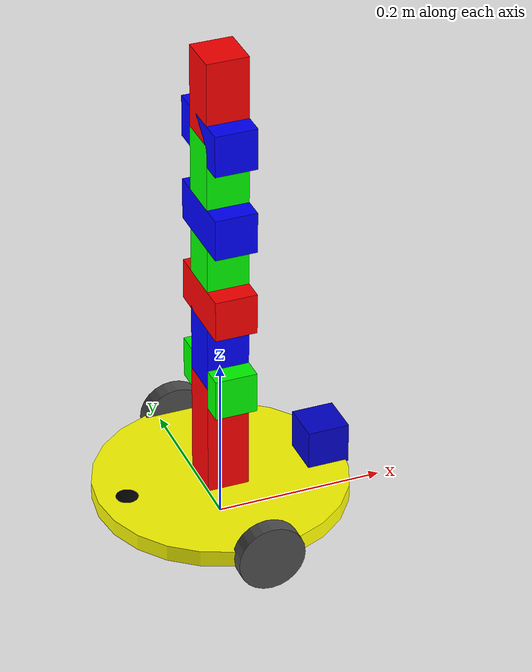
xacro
<?xml version="1.0"?>
<robot name="differential_wheeled_robot" xmlns:xacro="http://ros.org/wiki/xacro">

  <xacro:include filename="$(find diff_mobile_robot)/urdf/wheel.urdf.xacro" />
  <include filename="$(find diff_mobile_robot)/urdf/toyoarm.urdf" />

<!-- Defining the colors used in this robot -->
  <material name="Black">
    <color rgba="0.0 0.0 0.0 1.0"/>
  </material>

  <material name="Red">
    <color rgba="0.8 0.0 0.0 1.0"/>
  </material>

  <material name="White">
    <color rgba="1.0 1.0 1.0 1.0"/>
  </material>

  <material name="Blue">
    <color rgba="0.0 0.0 0.8 1.0"/>
  </material>

  <material name="Yellow">
    <color rgba="1.0 1.0 0.0 1.0"/>
  </material>

  <!-- PROPERTY LIST -->
  <!--All units in m-kg-s-radians unit system -->
  <property name="M_PI" value="3.1415926535897931" />
  <property name="M_PI_2" value="1.570796327" />
  <property name="DEG_TO_RAD" value="0.017453293" />

  <!-- Main body radius and height -->
  <!-- Main Body Cylinder base   -->
  <property name="base_height" value="0.02" />
  <property name="base_radius" value="0.15" />
  <property name="base_mass" value="50.0" /> <!-- in kg-->

  <!-- caster wheel radius and height -->
  <!-- caster wheel mass -->
  <property name="caster_f_height" value="0.04" />
  <property name="caster_f_radius" value="0.025" />
  <property name="caster_f_mass" value="50.0" /> <!-- in kg-->

  <!-- caster wheel radius and height -->
  <!-- caster wheel mass -->
  <property name="caster_b_height" value="0.04" />
  <property name="caster_b_radius" value="0.025" />
  <property name="caster_b_mass" value="50.0" /> <!-- in kg-->

  <!-- Wheels -->
  <property name="wheel_mass" value="50.0" /> --> <!-- in kg-->
  <property name="base_x_origin_to_wheel_origin" value="0.25" />
  <property name="base_y_origin_to_wheel_origin" value="0.3" />
  <property name="base_z_origin_to_wheel_origin" value="0.0" />

  <!-- Hokuyo Laser scanner -->
  <property name="hokuyo_size" value="0.05" />

  <!-- Macro for calculating inertia of cylinder -->
  <macro name="cylinder_inertia" params="m r h">
    <inertia  ixx="${m*(3*r*r+h*h)/12}" ixy = "0" ixz = "0"
              iyy="${m*(3*r*r+h*h)/12}" iyz = "0"
              izz="${m*r*r/2}" />
  </macro>

  <!-- BASE-FOOTPRINT -->
  <!-- base_footprint is a fictitious link(frame) that is on the ground right below base_link origin -->
  <link name="base_footprint">
    <inertial>
      <mass value="0.0001" />
      <origin xyz="0 0 0" />
      <inertia ixx="0.0001" ixy="0.0" ixz="0.0"
          iyy="0.0001" iyz="0.0"
          izz="0.0001" />
    </inertial>
    <visual>
        <origin xyz="0 0 0" rpy="0 0 0" />
        <geometry>
            <box size="0.001 0.001 0.001" />
        </geometry>
    </visual>
  </link>

  <gazebo reference="base_footprint">
    <turnGravityOff>false</turnGravityOff>
  </gazebo>

  <joint name="base_footprint_joint" type="fixed">
    <origin xyz="0 0 ${wheel_radius - base_z_origin_to_wheel_origin}" rpy="0 0 0" />
    <parent link="base_footprint"/>
    <child link="base_link" />
  </joint>

  <!-- BASE-LINK -->
  <!--Actual body/chassis of the robot-->
  <link name="base_link">
    <inertial>
      <mass value="${base_mass}" />
      <origin xyz="0 0 0" />
      <!--The 3x3 rotational inertia matrix. -->
        <cylinder_inertia  m="${base_mass}" r="${base_radius}" h="${base_height}" />

    </inertial>
    <visual>
      <origin xyz="0 0 0" rpy="0 0 0" />
      <geometry>
          <cylinder length="${base_height}" radius="${base_radius}" />
      </geometry>
      <material name="Yellow" />
    </visual>
    <collision>
      <origin xyz="0 0 0" rpy="0 0 0 " />
      <geometry>
          <cylinder length="${base_height}" radius="${base_radius}" />
      </geometry>
    </collision>
  </link>
  <gazebo reference="base_link">
    <material>Gazebo/White</material>
    <turnGravityOff>false</turnGravityOff>
  </gazebo>

<!--Caster front  -->

    <link name="caster_front_link">
    <visual>
      <origin xyz="0 0.02 0" rpy="${M_PI/2} 0 0" />
      <geometry>
 <sphere radius="${caster_f_radius}" />
      </geometry>
      <material name="Black" />
    </visual>

      <collision>
        <geometry>
 <sphere radius="${caster_f_radius}" />
        </geometry>
      <origin xyz="0 0.02 0" rpy="${M_PI/2} 0 0" />
      </collision>
      <inertial>
        <mass value="${caster_f_mass}" />
        <origin xyz="0 0 0" />
        <inertia ixx="0.001" ixy="0.0" ixz="0.0"
                 iyy="0.001" iyz="0.0"
                 izz="0.001" />
      </inertial>
    </link>

 <joint name="caster_front_joint" type="fixed">
      <parent link="base_link"/>
      <child link="caster_front_link"/>
      <origin xyz="0.115 0.0 0.007" rpy="${-M_PI/2} 0 0"/>
    </joint>
  <gazebo reference="caster_front_link">
    <turnGravityOff>false</turnGravityOff>
  </gazebo>

<!--Caster back  -->
    <link name="caster_back_link">
    <visual>
      <origin xyz="0.02 0.02 0 " rpy="${M_PI/2} 0 0" />
      <geometry>
 <sphere radius="${caster_b_radius}" />
      </geometry>
      <material name="Black" />
    </visual>
      <collision>
        <geometry>
 <sphere radius="${caster_b_radius}" />
        </geometry>
      <origin xyz="0 0.02 0 " rpy="${M_PI/2} 0 0" />
      </collision>
      <inertial>
        <mass value="${caster_b_mass}" />
        <origin xyz="0 0 0" />
        <inertia ixx="0.001" ixy="0.0" ixz="0.0"
                 iyy="0.001" iyz="0.0"
                 izz="0.001" />
      </inertial>
    </link>

    <joint name="caster_back_joint" type="fixed">
      <parent link="base_link"/>
      <child link="caster_back_link"/>
      <origin xyz="-0.135 0.0 0.009" rpy="${-M_PI/2} 0 0"/>
    </joint>

  <gazebo reference="caster_back_link">
    <turnGravityOff>false</turnGravityOff>
  </gazebo>

<!-- Wheel Definitions -->
  <wheel fb="front" lr="right" parent="base_link" translateX="0" translateY="0.5" flipY="1"/>
  <wheel fb="front" lr="left" parent="base_link" translateX="0" translateY="-0.5" flipY="1"/>

  <!-- SENSORS -->

  <!-- hokuyo -->
  <link name="hokuyo_link">
    <visual>
      <origin xyz="0 0 0" rpy="0 0 0" />
      <geometry>
        <box size="${hokuyo_size} ${hokuyo_size} ${hokuyo_size}"/>
      </geometry>
      <material name="Blue" />
    </visual>
  </link>
  <joint name="hokuyo_joint" type="fixed">
    <origin xyz="${base_radius - hokuyo_size/2} 0 ${base_height+hokuyo_size/4}" rpy="0 0 0" />
    <parent link="base_link"/>
    <child link="hokuyo_link" />
  </joint>
  <gazebo reference="hokuyo_link">
    <material>Gazebo/Blue</material>
    <turnGravityOff>false</turnGravityOff>
    <sensor type="ray" name="head_hokuyo_sensor">
      <pose>${hokuyo_size/2} 0 0 0 0 0</pose>
      <visualize>false</visualize>
      <update_rate>40</update_rate>
      <ray>
        <scan>
          <horizontal>
            <samples>720</samples>
            <resolution>1</resolution>
            <min_angle>-3.141592</min_angle>
            <max_angle>3.141592</max_angle>
          </horizontal>
        </scan>
        <range>
          <min>0.30</min>
          <max>100.0</max>
          <resolution>0.001</resolution>
        </range>
      </ray>
      <plugin name="gazebo_ros_head_hokuyo_controller" filename="libgazebo_ros_laser.so">
        <topicName>/scan</topicName>
        <frameName>hokuyo_link</frameName>
      </plugin>
    </sensor>
  </gazebo>

  <!-- Differential drive controller  -->
  <gazebo>
    <plugin name="differential_drive_controller" filename="libgazebo_ros_diff_drive.so">

      <rosDebugLevel>Debug</rosDebugLevel>
      <publishWheelTF>false</publishWheelTF>
      <robotNamespace>/</robotNamespace>
      <publishTf>1</publishTf>
      <publishWheelJointState>false</publishWheelJointState>
      <alwaysOn>true</alwaysOn>
      <updateRate>100.0</updateRate>
      <leftJoint>front_left_wheel_joint</leftJoint>
      <rightJoint>front_right_wheel_joint</rightJoint>
      <wheelSeparation>${2*base_radius}</wheelSeparation>
      <wheelDiameter>${2*wheel_radius}</wheelDiameter>
      <broadcastTF>1</broadcastTF>
      <wheelTorque>30</wheelTorque>
      <wheelAcceleration>1.8</wheelAcceleration>
      <commandTopic>cmd_vel</commandTopic>
      <odometryFrame>odom</odometryFrame>
      <odometryTopic>odom</odometryTopic>
      <robotBaseFrame>base_footprint</robotBaseFrame>
      <legacyMode>false</legacyMode>
      <odometrySource>world</odometrySource>
      <publishOdomTF>true</publishOdomTF>
    </plugin>
  </gazebo>
</robot>

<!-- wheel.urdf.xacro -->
<robot name="wheel" xmlns:xacro="http://www.ros.org/wiki/xacro">

  <!-- Wheels -->
  <property name="wheel_radius" value="0.04" />
  <property name="wheel_height" value="0.02" />
  <property name="wheel_mass" value="2.5" /> <!-- in kg-->

  <property name="base_x_origin_to_wheel_origin" value="0.25" />
  <property name="base_y_origin_to_wheel_origin" value="0.3" />
  <property name="base_z_origin_to_wheel_origin" value="0.0" />

  <macro name="cylinder_inertia" params="m r h">
    <inertia  ixx="${m*(3*r*r+h*h)/12}" ixy = "0" ixz = "0"
              iyy="${m*(3*r*r+h*h)/12}" iyz = "0"
              izz="${m*r*r/2}" />
  </macro>

  <xacro:macro name="wheel" params="fb lr parent translateX translateY flipY"> <!--fb : front, back ; lr: left, right -->
    <link name="${fb}_${lr}_wheel">
      <visual>
        <origin xyz="0 0 0" rpy="${flipY*M_PI/2} 0 0" />
        <geometry>
          <cylinder length="${wheel_height}" radius="${wheel_radius}" />
        </geometry>
        <material name="DarkGray" />
      </visual>
      <collision>
        <origin xyz="0 0 0" rpy="${flipY*M_PI/2} 0 0" />
        <geometry>
          <cylinder length="${wheel_height}" radius="${wheel_radius}" />
        </geometry>
      </collision>
      <inertial>
        <mass value="${wheel_mass}" />
        <origin xyz="0 0 0" />
        <cylinder_inertia  m="${wheel_mass}" r="${wheel_radius}" h="${wheel_height}" />
      </inertial>
    </link>

    <gazebo reference="${fb}_${lr}_wheel">
      <mu1 value="1.0"/>
      <mu2 value="1.0"/>
      <kp  value="10000000.0" />
      <kd  value="1.0" />
      <fdir1 value="1 0 0"/>
      <material>Gazebo/Grey</material>
      <turnGravityOff>false</turnGravityOff>
    </gazebo>

    <joint name="${fb}_${lr}_wheel_joint" type="continuous">
      <parent link="${parent}"/>
      <child link="${fb}_${lr}_wheel"/>
      <origin xyz="${translateX * base_x_origin_to_wheel_origin} ${translateY * base_y_origin_to_wheel_origin} ${base_z_origin_to_wheel_origin}" rpy="0 0 0" />
      <axis xyz="0 1 0" rpy="0 0 0" />
      <limit effort="100" velocity="100"/>
      <joint_properties damping="0.0" friction="0.0"/>
    </joint>

    <!-- Transmission is important to link the joints and the controller -->
    <transmission name="${fb}_${lr}_wheel_joint_trans">
      <type>transmission_interface/SimpleTransmission</type>
      <joint name="${fb}_${lr}_wheel_joint">
        <hardwareInterface>EffortJointInterface</hardwareInterface>
      </joint>
      <actuator name="${fb}_${lr}_wheel_joint_motor">
        <hardwareInterface>EffortJointInterface</hardwareInterface>
        <mechanicalReduction>1</mechanicalReduction>
      </actuator>
    </transmission>

  </xacro:macro>
</robot>

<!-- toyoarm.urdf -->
<robot name="toyoarm">

  <material name="red">
    <color rgba="1.0 0.0 0.0 1.0"/>
  </material>
  <material name="green">
    <color rgba="0.0 1.0 0.0 1.0"/>
  </material>
  <material name="blue">
    <color rgba="0.0 0.0 1.0 1.0"/>
  </material>

  <joint name="fixed_toyo" type="fixed">
    <parent link="base_link"/>
    <child link="base"/>
  </joint>

  <link name="base"/>
  <joint name="fixed" type="fixed">
    <parent link="base"/>
    <child link="link1"/>
  </joint>

  <!-- Link 1 -->
  <link name="link1">
    <collision>
      <origin rpy="0 0 0" xyz="0 0 0.075"/>
      <geometry>
        <box size="0.05 0.05 0.15"/>
      </geometry>
    </collision>
    <visual>
      <origin rpy="0 0 0" xyz="0 0 0.075"/>
      <geometry>
        <box size="0.05 0.05 0.15"/>
      </geometry>
      <material name="red"/>
    </visual>
    <inertial>
      <origin rpy="0 0 0" xyz="0 0 0.075"/>
      <mass value="0.1"/>
      <inertia ixx="1.0" ixy="0.0" ixz="0.0" iyy="1.0" iyz="0.0" izz="1.0"/>
    </inertial>
  </link>
  <joint name="joint1" type="revolute">
    <parent link="link1"/>
    <child link="link2"/>
    <origin rpy="0 0 0" xyz="0 0 0.15"/>
    <axis xyz="0 0 1"/>
    <limit effort="30" lower="-2.617" upper="2.617" velocity="1.571"/>
  </joint>

  <gazebo reference="link1">
    <material>Gazebo/Red</material>
  </gazebo>
  <transmission name="trans1">
    <type>transmission_interface/SimpleTransmission</type>
    <joint name="joint1">
      <hardwareInterface>EffortJointInterface</hardwareInterface>
    </joint>
    <actuator name="motor1">
       <hardwareInterface>EffortJointInterface</hardwareInterface>
      <mechanicalReduction>1</mechanicalReduction>
    </actuator>
  </transmission>

  <!-- Link 2 -->
  <link name="link2">
    <collision>
      <origin rpy="0 0 0" xyz="0 0 0.0"/>
      <geometry>
        <box size="0.05 0.1 0.05"/>
      </geometry>
    </collision>
    <visual>
      <origin rpy="0 0 0" xyz="0 0 0.0"/>
      <geometry>
        <box size="0.05 0.1 0.05"/>
      </geometry>
      <material name="green"/>
    </visual>
    <inertial>
      <origin rpy="0 0 0" xyz="0 0 0.0"/>
      <mass value="0.1"/>
      <inertia ixx="1.0" ixy="0.0" ixz="0.0" iyy="1.0" iyz="0.0" izz="1.0"/>
    </inertial>
  </link>
  <joint name="joint2" type="revolute">
    <parent link="link2"/>
    <child link="link3"/>
    <origin rpy="0 0 0" xyz="0 0 0.0"/>
    <axis xyz="0 1 0"/>
    <limit effort="30" lower="-2.617" upper="2.617" velocity="1.571"/>
  </joint>

  <gazebo reference="link2">
    <material>Gazebo/Green</material>
  </gazebo>
  <transmission name="trans1">
    <type>transmission_interface/SimpleTransmission</type>
    <joint name="joint2">
      <hardwareInterface>EffortJointInterface</hardwareInterface>
    </joint>
    <actuator name="motor2">
       <hardwareInterface>EffortJointInterface</hardwareInterface>
      <mechanicalReduction>1</mechanicalReduction>
    </actuator>
  </transmission>

  <!-- Link 3 -->
  <link name="link3">
    <collision>
      <origin rpy="0 0 0" xyz="0 0 0.0525"/>
      <geometry>
        <box size="0.05 0.05 0.105"/>
      </geometry>
    </collision>
    <visual>
      <origin rpy="0 0 0" xyz="0 0 0.0525"/>
      <geometry>
        <box size="0.05 0.05 0.105"/>
      </geometry>
      <material name="blue"/>
    </visual>
    <inertial>
      <origin rpy="0 0 0" xyz="0 0 0.0525"/>
      <mass value="0.1"/>
      <inertia ixx="1.0" ixy="0.0" ixz="0.0" iyy="1.0" iyz="0.0" izz="1.0"/>
    </inertial>
  </link>
  <joint name="joint3" type="revolute">
    <parent link="link3"/>
    <child link="link4"/>
    <origin rpy="0 0 0" xyz="0 0 0.105"/>
    <axis xyz="0 0 1"/>
    <limit effort="30" lower="-2.617" upper="2.617" velocity="1.571"/>
  </joint>

  <gazebo reference="link3">
    <material>Gazebo/Blue</material>
  </gazebo>
  <transmission name="trans3">
    <type>transmission_interface/SimpleTransmission</type>
    <joint name="joint3">
      <hardwareInterface>EffortJointInterface</hardwareInterface>
    </joint>
    <actuator name="motor3">
       <hardwareInterface>EffortJointInterface</hardwareInterface>
      <mechanicalReduction>1</mechanicalReduction>
    </actuator>
  </transmission>

  <!-- Link 4 -->
  <link name="link4">
    <collision>
      <origin rpy="0 0 0" xyz="0 0 0.0"/>
      <geometry>
        <box size="0.1 0.1 1"/>
      </geometry>
    </collision>
    <visual>
      <origin rpy="0 0 0" xyz="0 0 0.0"/>
      <geometry>
        <box size="0.05 0.1 0.05"/>
      </geometry>
      <material name="red"/>
    </visual>
    <inertial>
      <origin rpy="0 0 0" xyz="0 0 0.0"/>
      <mass value="0.1"/>
      <inertia ixx="1.0" ixy="0.0" ixz="0.0" iyy="1.0" iyz="0.0" izz="1.0"/>
    </inertial>
  </link>
  <joint name="joint4" type="revolute">
    <parent link="link4"/>
    <child link="link5"/>
    <origin rpy="0 0 0" xyz="0 0 0.0"/>
    <axis xyz="0 1 0"/>
    <limit effort="30" lower="-2.617" upper="2.617" velocity="1.571"/>
  </joint>

  <gazebo reference="link4">
    <material>Gazebo/Red</material>
  </gazebo>
  <transmission name="trans4">
    <type>transmission_interface/SimpleTransmission</type>
    <joint name="joint4">
      <hardwareInterface>EffortJointInterface</hardwareInterface>
    </joint>
    <actuator name="motor4">
       <hardwareInterface>EffortJointInterface</hardwareInterface>
      <mechanicalReduction>1</mechanicalReduction>
    </actuator>
  </transmission>

  <!-- Link 5 -->
  <link name="link5">
    <collision>
      <origin rpy="0 0 0" xyz="0 0 0.0525"/>
      <geometry>
        <box size="0.05 0.05 0.105"/>
      </geometry>
    </collision>
    <visual>
      <origin rpy="0 0 0" xyz="0 0 0.0525"/>
      <geometry>
        <box size="0.05 0.05 0.105"/>
      </geometry>
      <material name="green"/>
    </visual>
    <inertial>
      <origin rpy="0 0 0" xyz="0 0 0.0525"/>
      <mass value="0.1"/>
      <inertia ixx="1.0" ixy="0.0" ixz="0.0" iyy="1.0" iyz="0.0" izz="1.0"/>
    </inertial>
  </link>
  <joint name="joint5" type="revolute">
    <parent link="link5"/>
    <child link="link6"/>
    <origin rpy="0 0 0" xyz="0 0 0.105"/>
    <axis xyz="0 1 0"/>
    <limit effort="30" lower="-2.617" upper="2.617" velocity="1.571"/>
  </joint>

  <gazebo reference="link5">
    <material>Gazebo/Green</material>
  </gazebo>
  <transmission name="trans5">
    <type>transmission_interface/SimpleTransmission</type>
    <joint name="joint5">
      <hardwareInterface>EffortJointInterface</hardwareInterface>
    </joint>
    <actuator name="motor5">
       <hardwareInterface>EffortJointInterface</hardwareInterface>
      <mechanicalReduction>1</mechanicalReduction>
    </actuator>
  </transmission>

  <!-- Link 6 -->
  <link name="link6">
    <collision>
      <origin rpy="0 0 0" xyz="0 0 0.0"/>
      <geometry>
        <box size="0.05 0.1 0.05"/>
      </geometry>
    </collision>
    <visual>
      <origin rpy="0 0 0" xyz="0 0 0.0"/>
      <geometry>
        <box size="0.05 0.1 0.05"/>
      </geometry>
      <material name="blue"/>
    </visual>
    <inertial>
      <origin rpy="0 0 0" xyz="0 0 0.0"/>
      <mass value="0.1"/>
      <inertia ixx="1.0" ixy="0.0" ixz="0.0" iyy="1.0" iyz="0.0" izz="1.0"/>
    </inertial>
  </link>
  <joint name="joint6" type="revolute">
    <parent link="link6"/>
    <child link="link7"/>
    <origin rpy="0 0 0" xyz="0 0 0.0"/>
    <axis xyz="0 0 1"/>
    <limit effort="30" lower="-2.617" upper="2.617" velocity="1.571"/>
  </joint>

  <gazebo reference="link6">
    <material>Gazebo/Blue</material>
  </gazebo>
  <transmission name="trans6">
    <type>transmission_interface/SimpleTransmission</type>
    <joint name="joint6">
      <hardwareInterface>EffortJointInterface</hardwareInterface>
    </joint>
    <actuator name="motor6">
       <hardwareInterface>EffortJointInterface</hardwareInterface>
      <mechanicalReduction>1</mechanicalReduction>
    </actuator>
  </transmission>

  <!-- Link 7 -->
  <link name="link7">
    <collision>
      <origin rpy="0 0 0" xyz="0 0 0.0525"/>
      <geometry>
        <box size="0.05 0.05 0.105"/>
      </geometry>
    </collision>
    <visual>
      <origin rpy="0 0 0" xyz="0 0 0.0525"/>
      <geometry>
        <box size="0.05 0.05 0.105"/>
      </geometry>
      <material name="green"/>
    </visual>
    <inertial>
      <origin rpy="0 0 0" xyz="0 0 0.0525"/>
      <mass value="0.1"/>
      <inertia ixx="1.0" ixy="0.0" ixz="0.0" iyy="1.0" iyz="0.0" izz="1.0"/>
    </inertial>
  </link>
  <joint name="joint7" type="revolute">
    <parent link="link7"/>
    <child link="link8"/>
    <origin rpy="0 0 0" xyz="0 0 0.105"/>
    <axis xyz="0 1 0"/>
    <limit effort="30" lower="-2.617" upper="2.617" velocity="1.571"/>
  </joint>

  <gazebo reference="link7">
    <material>Gazebo/Red</material>
  </gazebo>
  <transmission name="trans7">
    <type>transmission_interface/SimpleTransmission</type>
    <joint name="joint7">
      <hardwareInterface>EffortJointInterface</hardwareInterface>
    </joint>
    <actuator name="motor7">
       <hardwareInterface>EffortJointInterface</hardwareInterface>
      <mechanicalReduction>1</mechanicalReduction>
    </actuator>
  </transmission>

  <!-- Link 8 -->
  <link name="link8">
    <collision>
      <origin rpy="0 0 0" xyz="0 0 0.0"/>
      <geometry>
        <box size="0.05 0.1 0.05"/>
      </geometry>
    </collision>
    <visual>
      <origin rpy="0 0 0" xyz="0 0 0.0"/>
      <geometry>
        <box size="0.05 0.1 0.05"/>
      </geometry>
      <material name="blue"/>
    </visual>
    <inertial>
      <origin rpy="0 0 0" xyz="0 0 0.0"/>
      <mass value="0.1"/>
      <inertia ixx="1.0" ixy="0.0" ixz="0.0" iyy="1.0" iyz="0.0" izz="1.0"/>
    </inertial>
  </link>
  <joint name="joint8" type="revolute">
    <parent link="link8"/>
    <child link="link9"/>
    <origin rpy="0 0 0" xyz="0 0 0.0"/>
    <axis xyz="0 0 1"/>
    <limit effort="30" lower="-2.617" upper="2.617" velocity="1.571"/>
  </joint>

  <gazebo reference="link8">
    <material>Gazebo/Green</material>
  </gazebo>
  <transmission name="trans8">
    <type>transmission_interface/SimpleTransmission</type>
    <joint name="joint8">
      <hardwareInterface>EffortJointInterface</hardwareInterface>
    </joint>
    <actuator name="motor8">
       <hardwareInterface>EffortJointInterface</hardwareInterface>
      <mechanicalReduction>1</mechanicalReduction>
    </actuator>
  </transmission>

  <!-- Link 9 (end effector)-->
  <link name="link9">
    <collision>
      <origin rpy="0 0 0" xyz="0 0 0.05"/>
      <geometry>
        <box size="0.05 0.05 0.1"/>
      </geometry>
    </collision>
    <visual>
      <origin rpy="0 0 0" xyz="0 0 0.05"/>
      <geometry>
        <box size="0.05 0.05 0.1"/>
      </geometry>
      <material name="red"/>
    </visual>
    <inertial>
      <origin rpy="0 0 0" xyz="0 0 0.05"/>
      <mass value="0.1"/>
      <inertia ixx="1.0" ixy="0.0" ixz="0.0" iyy="1.0" iyz="0.0" izz="1.0"/>
    </inertial>
  </link>

  <gazebo reference="link9">
    <material>Gazebo/Blue</material>
  </gazebo>

  <gazebo>
    <plugin name="gazebo_ros_control" filename="libgazebo_ros_control.so">
      <robotNamespace>/toyoarm</robotNamespace>
    </plugin>
  </gazebo>

</robot>
